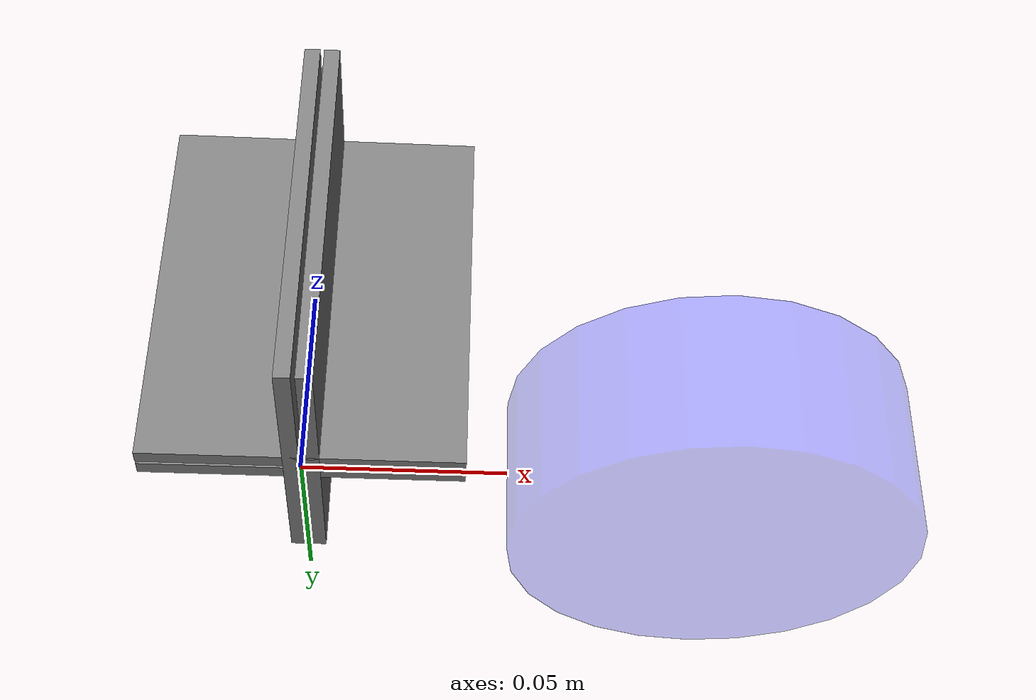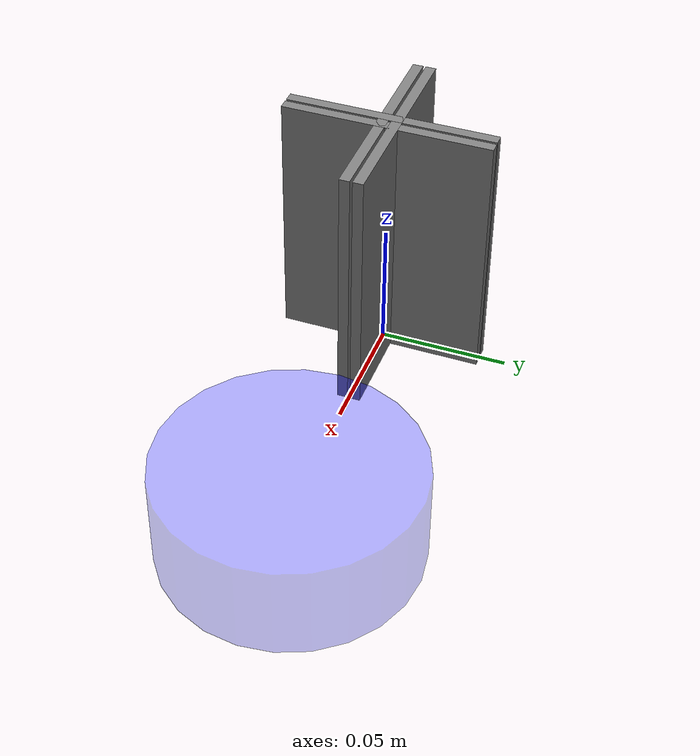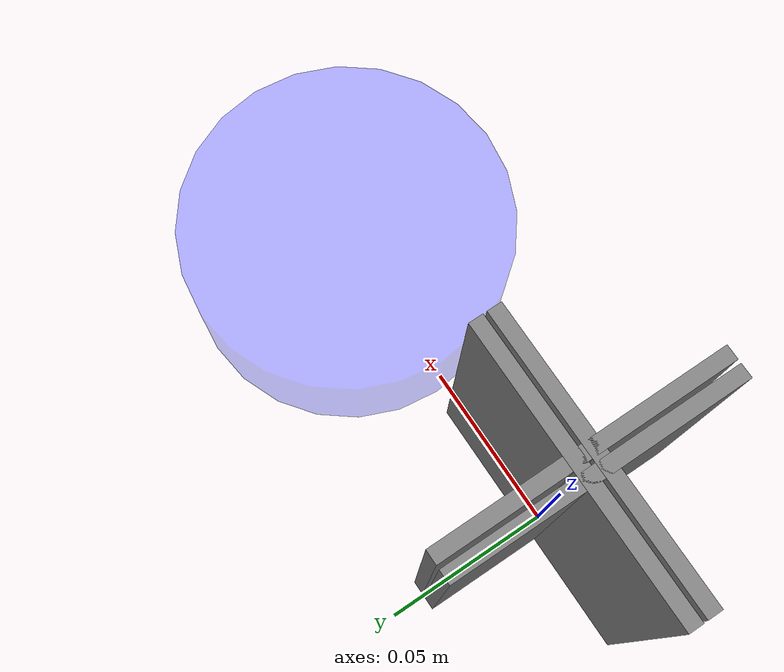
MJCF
<mujoco model="pipette_env">
  <compiler angle="degree"/>

  <option timestep="0.002" gravity="0 0 -9.81"/>

  <worldbody>
    <!-- PIPETTE BODY -->
    <body name="pipette" pos="0 0 0">
      <!-- Approximate hollow barrel with 4 thin boxes -->
      <geom type="box" size="0.002 0.04 0.05" pos=" 0.0025  0 0.05"/>
      <geom type="box" size="0.002 0.04 0.05" pos="-0.0025  0 0.05"/>
      <geom type="box" size="0.04 0.002 0.05" pos=" 0    0.0025 0.05"/>
      <geom type="box" size="0.04 0.002 0.05" pos=" 0   -0.0025 0.05"/>

      <!-- SLIDING PLUNGER -->
      <body name="plunger" pos="0 0 0">
        <joint name="plunger:slide" type="slide" axis="0 0 1"
               limited="true" range="0 0.08"/>
        <geom type="cylinder" size="0.0035 0.02" pos="0 0 0.06"/>
      </body>

      <!-- HOLE at the TIP (we’ll use this to detect spheres) -->
      <site name="tip_hole" type="sphere" size="0.001" pos="0 0 0.001"/>
    </body>

    <!-- SOURCE CONTAINER (just a cylinder to hold your spheres) -->
    <body name="source" pos="0.1 0 0">
      <geom type="cylinder" size="0.05 0.02" rgba="0 0 1 0.3"/>
      <!-- individual sphere bodies will be spawned by Python -->
    </body>
  </worldbody>

  <actuator>
    <!-- Plunger position actuator -->
    <position name="plunger_act" joint="plunger:slide" kp="500"/>
  </actuator>
</mujoco>
